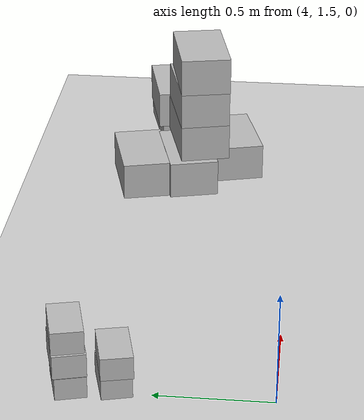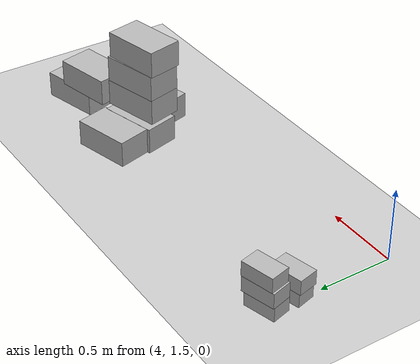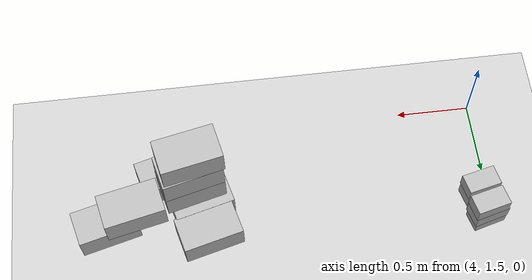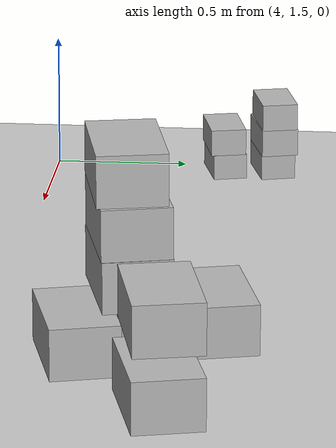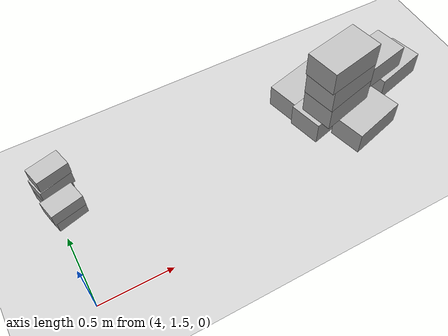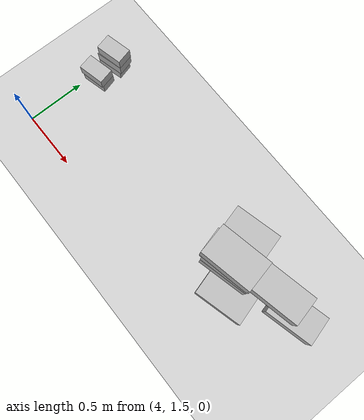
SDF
<sdf version="1.7">
 <world name="default">
  <model name="ground_plane">
   <static>1</static>
   <link name="link">
    <collision name="collision">
     <geometry><plane><normal>0 0 1</normal><size>100 100</size></plane></geometry>
     <surface><friction><ode><mu>100</mu><mu2>50</mu2></ode></friction></surface>
    </collision>
    <visual name="visual">
     <cast_shadows>0</cast_shadows>
     <geometry><plane><normal>0 0 1</normal><size>100 100</size></plane></geometry>
     <material>
      <script><uri>file://media/materials/scripts/gazebo.material</uri><name>Gazebo/Grey</name></script>
     </material>
    </visual>
   </link>
  </model>
  <model name="small box_clone_6">
   <pose>4.04698 2.34586 0.049245 0 -0 0.265136</pose>
   <static>0</static>
   <link name="link">
    <inertial>
     <mass>2</mass>
     <inertia><ixx>1</ixx><ixy>0</ixy><ixz>0</ixz><iyy>1</iyy><iyz>0</iyz><izz>1</izz></inertia>
    </inertial>
    <collision name="collision">
     <geometry><box><size>0.4 0.230001 0.18</size></box></geometry>
     <surface><contact><ode><max_vel>0.1</max_vel><min_depth>0.001</min_depth></ode></contact></surface>
    </collision>
    <visual name="visual">
     <geometry>
      <mesh><uri>model://small_box/meshes/small_box.dae</uri><scale>0.547255 0.547255 0.547255</scale></mesh>
     </geometry>
    </visual>
   </link>
  </model>
  <model name="small box_clone_7_clone_5">
   <pose>5.96491 1.9737 0.629913 -3.14141 0.000156 -2.93326</pose>
   <static>0</static>
   <link name="link">
    <inertial>
     <mass>2</mass>
     <inertia><ixx>1</ixx><ixy>0</ixy><ixz>0</ixz><iyy>1</iyy><iyz>0</iyz><izz>1</izz></inertia>
    </inertial>
    <collision name="collision">
     <geometry><box><size>0.4 0.23 0.18</size></box></geometry>
     <surface><contact><ode><max_vel>0.1</max_vel><min_depth>0.001</min_depth></ode></contact></surface>
    </collision>
    <visual name="visual">
     <geometry><mesh><uri>model://small_box/meshes/small_box.dae</uri></mesh></geometry>
    </visual>
   </link>
  </model>
  <model name="small box_clone_7_clone_16">
   <pose>5.97978 1.98341 0.269953 -3.14158 0.000234 -2.88981</pose>
   <static>0</static>
   <link name="link">
    <inertial>
     <mass>2</mass>
     <inertia><ixx>1</ixx><ixy>0</ixy><ixz>0</ixz><iyy>1</iyy><iyz>0</iyz><izz>1</izz></inertia>
    </inertial>
    <collision name="collision">
     <geometry><box><size>0.4 0.23 0.18</size></box></geometry>
     <surface><contact><ode><max_vel>0.1</max_vel><min_depth>0.001</min_depth></ode></contact></surface>
    </collision>
    <visual name="visual">
     <geometry><mesh><uri>model://small_box/meshes/small_box.dae</uri></mesh></geometry>
    </visual>
   </link>
  </model>
  <model name="small box_clone_7_clone_17">
   <pose>5.97834 1.98266 0.449948 -3.14156 0.000237 -2.89999</pose>
   <static>0</static>
   <link name="link">
    <inertial>
     <mass>2</mass>
     <inertia><ixx>1</ixx><ixy>0</ixy><ixz>0</ixz><iyy>1</iyy><iyz>0</iyz><izz>1</izz></inertia>
    </inertial>
    <collision name="collision">
     <geometry><box><size>0.4 0.23 0.18</size></box></geometry>
     <surface><contact><ode><max_vel>0.1</max_vel><min_depth>0.001</min_depth></ode></contact></surface>
    </collision>
    <visual name="visual">
     <geometry><mesh><uri>model://small_box/meshes/small_box.dae</uri></mesh></geometry>
    </visual>
   </link>
  </model>
  <model name="small box_clone_7_clone_18">
   <pose>6.13449 1.82304 0.09 0.000335 0.000193 -2.87522</pose>
   <static>0</static>
   <link name="link">
    <inertial>
     <mass>2</mass>
     <inertia><ixx>1</ixx><ixy>0</ixy><ixz>0</ixz><iyy>1</iyy><iyz>0</iyz><izz>1</izz></inertia>
    </inertial>
    <collision name="collision">
     <geometry><box><size>0.4 0.23 0.18</size></box></geometry>
     <surface><contact><ode><max_vel>0.1</max_vel><min_depth>0.001</min_depth></ode></contact></surface>
    </collision>
    <visual name="visual">
     <geometry><mesh><uri>model://small_box/meshes/small_box.dae</uri></mesh></geometry>
    </visual>
   </link>
  </model>
  <model name="small box_clone_7_clone_22">
   <pose>5.8948 2.26289 0.089489 -3.14156 0.000202 -2.88971</pose>
   <static>0</static>
   <link name="link">
    <inertial>
     <mass>2</mass>
     <inertia><ixx>1</ixx><ixy>0</ixy><ixz>0</ixz><iyy>1</iyy><iyz>0</iyz><izz>1</izz></inertia>
    </inertial>
    <collision name="collision">
     <geometry><box><size>0.4 0.23 0.18</size></box></geometry>
     <surface><contact><ode><max_vel>0.1</max_vel><min_depth>0.001</min_depth></ode></contact></surface>
    </collision>
    <visual name="visual">
     <geometry><mesh><uri>model://small_box/meshes/small_box.dae</uri></mesh></geometry>
    </visual>
   </link>
  </model>
  <model name="small box_clone_7_clone_24">
   <pose>5.93222 2.03473 0.08995 -3.14159 0.000248 -2.88835</pose>
   <static>0</static>
   <link name="link">
    <inertial>
     <mass>2</mass>
     <inertia><ixx>1</ixx><ixy>0</ixy><ixz>0</ixz><iyy>1</iyy><iyz>0</iyz><izz>1</izz></inertia>
    </inertial>
    <collision name="collision">
     <geometry><box><size>0.4 0.23 0.18</size></box></geometry>
     <surface><contact><ode><max_vel>0.1</max_vel><min_depth>0.001</min_depth></ode></contact></surface>
    </collision>
    <visual name="visual">
     <geometry><mesh><uri>model://small_box/meshes/small_box.dae</uri></mesh></geometry>
    </visual>
   </link>
  </model>
  <model name="small box_clone_7_clone_25">
   <pose>6.56799 2.13796 0.089499 -3.13725 -0 -2.88913</pose>
   <static>0</static>
   <link name="link">
    <inertial>
     <mass>2</mass>
     <inertia><ixx>1</ixx><ixy>0</ixy><ixz>0</ixz><iyy>1</iyy><iyz>0</iyz><izz>1</izz></inertia>
    </inertial>
    <collision name="collision">
     <geometry><box><size>0.4 0.23 0.18</size></box></geometry>
     <surface><contact><ode><max_vel>0.1</max_vel><min_depth>0.001</min_depth></ode></contact></surface>
    </collision>
    <visual name="visual">
     <geometry><mesh><uri>model://small_box/meshes/small_box.dae</uri></mesh></geometry>
    </visual>
   </link>
  </model>
  <model name="small box_clone_7_clone_28">
   <pose>6.37228 2.12875 0.269912 3.14083 4e-06 -2.9231</pose>
   <static>0</static>
   <link name="link">
    <inertial>
     <mass>2</mass>
     <inertia><ixx>1</ixx><ixy>0</ixy><ixz>0</ixz><iyy>1</iyy><iyz>0</iyz><izz>1</izz></inertia>
    </inertial>
    <collision name="collision">
     <geometry><box><size>0.4 0.23 0.18</size></box></geometry>
     <surface><contact><ode><max_vel>0.1</max_vel><min_depth>0.001</min_depth></ode></contact></surface>
    </collision>
    <visual name="visual">
     <geometry><mesh><uri>model://small_box/meshes/small_box.dae</uri></mesh></geometry>
    </visual>
   </link>
  </model>
  <model name="small box_clone_7_clone_30">
   <pose>4.06175 2.15664 0.147219 3.14158 -3e-05 -2.91307</pose>
   <static>0</static>
   <link name="link">
    <inertial>
     <mass>2</mass>
     <inertia><ixx>1</ixx><ixy>0</ixy><ixz>0</ixz><iyy>1</iyy><iyz>0</iyz><izz>1</izz></inertia>
    </inertial>
    <collision name="collision">
     <geometry><box><size>0.4 0.229999 0.18</size></box></geometry>
     <surface><contact><ode><max_vel>0.1</max_vel><min_depth>0.001</min_depth></ode></contact></surface>
    </collision>
    <visual name="visual">
     <geometry>
      <mesh><uri>model://small_box/meshes/small_box.dae</uri><scale>0.56291 0.56291 0.56291</scale></mesh>
     </geometry>
    </visual>
   </link>
  </model>
  <model name="small box_clone_7_clone_31">
   <pose>4.05519 2.35082 0.1507 -3.1412 0.001074 -2.87559</pose>
   <static>0</static>
   <link name="link">
    <inertial>
     <mass>2</mass>
     <inertia><ixx>1</ixx><ixy>0</ixy><ixz>0</ixz><iyy>1</iyy><iyz>0</iyz><izz>1</izz></inertia>
    </inertial>
    <collision name="collision">
     <geometry><box><size>0.4 0.230001 0.180001</size></box></geometry>
     <surface><contact><ode><max_vel>0.1</max_vel><min_depth>0.001</min_depth></ode></contact></surface>
    </collision>
    <visual name="visual">
     <geometry>
      <mesh><uri>model://small_box/meshes/small_box.dae</uri><scale>0.581503 0.581503 0.581503</scale></mesh>
     </geometry>
    </visual>
   </link>
  </model>
  <model name="small box_clone_7_clone_34">
   <pose>4.06291 2.35415 0.253781 -3.14064 0.000606 -2.89976</pose>
   <static>0</static>
   <link name="link">
    <inertial>
     <mass>2</mass>
     <inertia><ixx>1</ixx><ixy>0</ixy><ixz>0</ixz><iyy>1</iyy><iyz>0</iyz><izz>1</izz></inertia>
    </inertial>
    <collision name="collision">
     <geometry><box><size>0.4 0.230001 0.180001</size></box></geometry>
     <surface><contact><ode><max_vel>0.1</max_vel><min_depth>0.001</min_depth></ode></contact></surface>
    </collision>
    <visual name="visual">
     <geometry>
      <mesh><uri>model://small_box/meshes/small_box.dae</uri><scale>0.56502 0.56502 0.56502</scale></mesh>
     </geometry>
    </visual>
   </link>
  </model>
  <model name="small box_clone_7_clone_35">
   <pose>4.06539 2.16164 0.048277 -3.14159 -0 -2.88315</pose>
   <static>0</static>
   <link name="link">
    <inertial>
     <mass>2</mass>
     <inertia><ixx>1</ixx><ixy>0</ixy><ixz>0</ixz><iyy>1</iyy><iyz>0</iyz><izz>1</izz></inertia>
    </inertial>
    <collision name="collision">
     <geometry><box><size>0.4 0.23 0.179999</size></box></geometry>
     <surface><contact><ode><max_vel>0.1</max_vel><min_depth>0.001</min_depth></ode></contact></surface>
    </collision>
    <visual name="visual">
     <geometry>
      <mesh><uri>model://small_box/meshes/small_box.dae</uri><scale>0.536474 0.536474 0.536474</scale></mesh>
     </geometry>
    </visual>
   </link>
  </model>
 </world>
</sdf>
